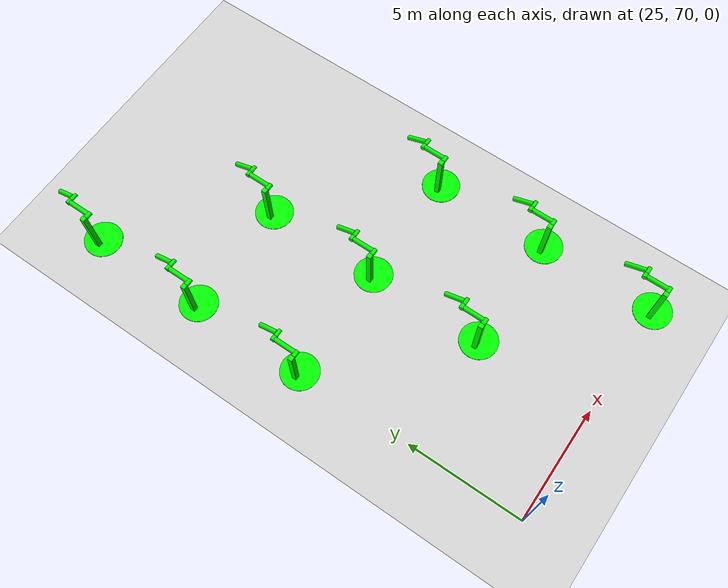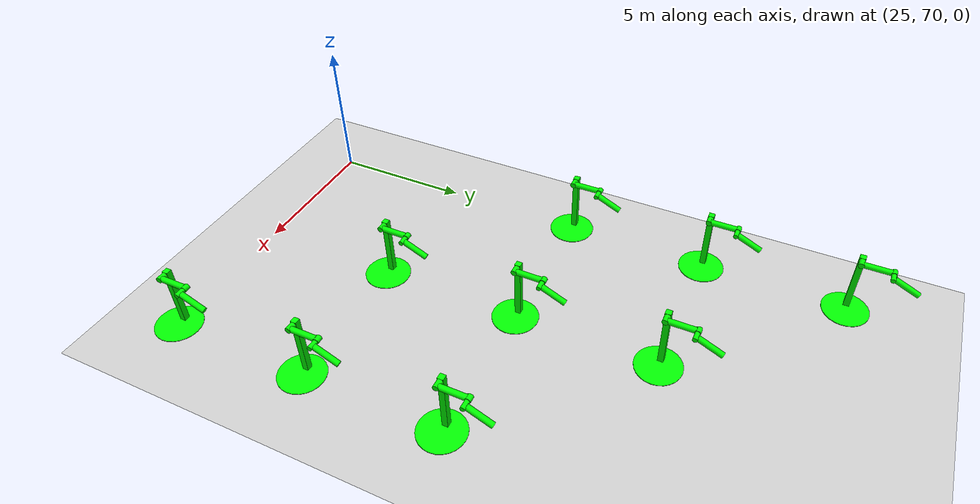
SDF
<sdf version="1.6">
 <world name="double_pendulums">
  <model name="ground_plane">
   <static>true</static>
   <link name="link">
    <collision name="collision">
     <geometry><plane><normal>0 0 1</normal><size>100 100</size></plane></geometry>
    </collision>
    <visual name="visual">
     <geometry><plane><normal>0 0 1</normal><size>100 100</size></plane></geometry>
     <material>
      <ambient>0.8 0.8 0.8 1</ambient>
      <diffuse>0.8 0.8 0.8 1</diffuse>
      <specular>0.8 0.8 0.8 1</specular>
     </material>
    </visual>
   </link>
  </model>
  <model name="dbl_pendulum_367">
   <pose>35 70 0 0 0 0</pose>
   <link name="base">
    <inertial><mass>100</mass></inertial>
    <visual name="vis_plate_on_ground">
     <pose>0 0 0.01 0 0 0</pose>
     <geometry><cylinder><radius>0.8</radius><length>0.02</length></cylinder></geometry>
     <material><ambient>0 1 0 1</ambient><diffuse>0 1 0 1</diffuse><specular>0 1 0 1</specular></material>
    </visual>
    <visual name="vis_pole">
     <pose>-0.275 0 1.1 0 0 0</pose>
     <geometry><box><size>0.2 0.2 2.2</size></box></geometry>
     <material><ambient>0 1 0 1</ambient><diffuse>0 1 0 1</diffuse><specular>0 1 0 1</specular></material>
    </visual>
    <collision name="col_plate_on_ground">
     <pose>0 0 0.01 0 0 0</pose>
     <geometry><cylinder><radius>0.8</radius><length>0.02</length></cylinder></geometry>
    </collision>
    <collision name="col_pole">
     <pose>-0.275 0 1.1 0 0 0</pose>
     <geometry><box><size>0.2 0.2 2.2</size></box></geometry>
    </collision>
   </link>
   <link name="upper_link">
    <pose>0 0 2.1 -1.5708 0 0</pose>
    <inertial><pose>0 0 0.5 0 0 0</pose></inertial>
    <visual name="vis_upper_joint">
     <pose>-0.05 0 0 0 1.5708 0</pose>
     <geometry><cylinder><radius>0.1</radius><length>0.3</length></cylinder></geometry>
     <material><ambient>0 1 0 1</ambient><diffuse>0 1 0 1</diffuse><specular>0 1 0 1</specular></material>
    </visual>
    <visual name="vis_lower_joint">
     <pose>0 0 1.0 0 1.5708 0</pose>
     <geometry><cylinder><radius>0.1</radius><length>0.2</length></cylinder></geometry>
     <material><ambient>0 1 0 1</ambient><diffuse>0 1 0 1</diffuse><specular>0 1 0 1</specular></material>
    </visual>
    <visual name="vis_cylinder">
     <pose>0 0 0.5 0 0 0</pose>
     <geometry><cylinder><radius>0.1</radius><length>0.9</length></cylinder></geometry>
     <material><ambient>0 1 0 1</ambient><diffuse>0 1 0 1</diffuse><specular>0 1 0 1</specular></material>
    </visual>
    <collision name="col_upper_joint">
     <pose>-0.05 0 0 0 1.5708 0</pose>
     <geometry><cylinder><radius>0.1</radius><length>0.3</length></cylinder></geometry>
    </collision>
    <collision name="col_lower_joint">
     <pose>0 0 1.0 0 1.5708 0</pose>
     <geometry><cylinder><radius>0.1</radius><length>0.2</length></cylinder></geometry>
    </collision>
    <collision name="col_cylinder">
     <pose>0 0 0.5 0 0 0</pose>
     <geometry><cylinder><radius>0.1</radius><length>0.9</length></cylinder></geometry>
    </collision>
   </link>
   <link name="lower_link">
    <pose>0.25 1.0 2.1 -2 0 0</pose>
    <inertial><pose>0 0 0.5 0 0 0</pose></inertial>
    <visual name="vis_lower_joint">
     <pose>0 0 0 0 1.5708 0</pose>
     <geometry><cylinder><radius>0.08</radius><length>0.3</length></cylinder></geometry>
     <material><ambient>0 1 0 1</ambient><diffuse>0 1 0 1</diffuse><specular>0 1 0 1</specular></material>
    </visual>
    <visual name="vis_cylinder">
     <pose>0 0 0.5 0 0 0</pose>
     <geometry><cylinder><radius>0.1</radius><length>0.9</length></cylinder></geometry>
     <material><ambient>0 1 0 1</ambient><diffuse>0 1 0 1</diffuse><specular>0 1 0 1</specular></material>
    </visual>
    <collision name="col_lower_joint">
     <pose>0 0 0 0 1.5708 0</pose>
     <geometry><cylinder><radius>0.08</radius><length>0.3</length></cylinder></geometry>
    </collision>
    <collision name="col_cylinder">
     <pose>0 0 0.5 0 0 0</pose>
     <geometry><cylinder><radius>0.1</radius><length>0.9</length></cylinder></geometry>
    </collision>
   </link>
   <joint name="upper_joint" type="revolute">
    <parent>base</parent>
    <child>upper_link</child>
    <axis><xyz>1.0 0 0</xyz></axis>
   </joint>
   <joint name="lower_joint" type="revolute">
    <parent>upper_link</parent>
    <child>lower_link</child>
    <axis><xyz>1.0 0 0</xyz></axis>
   </joint>
  </model>
  <model name="dbl_pendulum_391">
   <pose>30 75 0 0 0 0</pose>
   <link name="base">
    <inertial><mass>100</mass></inertial>
    <visual name="vis_plate_on_ground">
     <pose>0 0 0.01 0 0 0</pose>
     <geometry><cylinder><radius>0.8</radius><length>0.02</length></cylinder></geometry>
     <material><ambient>0 1 0 1</ambient><diffuse>0 1 0 1</diffuse><specular>0 1 0 1</specular></material>
    </visual>
    <visual name="vis_pole">
     <pose>-0.275 0 1.1 0 0 0</pose>
     <geometry><box><size>0.2 0.2 2.2</size></box></geometry>
     <material><ambient>0 1 0 1</ambient><diffuse>0 1 0 1</diffuse><specular>0 1 0 1</specular></material>
    </visual>
    <collision name="col_plate_on_ground">
     <pose>0 0 0.01 0 0 0</pose>
     <geometry><cylinder><radius>0.8</radius><length>0.02</length></cylinder></geometry>
    </collision>
    <collision name="col_pole">
     <pose>-0.275 0 1.1 0 0 0</pose>
     <geometry><box><size>0.2 0.2 2.2</size></box></geometry>
    </collision>
   </link>
   <link name="upper_link">
    <pose>0 0 2.1 -1.5708 0 0</pose>
    <inertial><pose>0 0 0.5 0 0 0</pose></inertial>
    <visual name="vis_upper_joint">
     <pose>-0.05 0 0 0 1.5708 0</pose>
     <geometry><cylinder><radius>0.1</radius><length>0.3</length></cylinder></geometry>
     <material><ambient>0 1 0 1</ambient><diffuse>0 1 0 1</diffuse><specular>0 1 0 1</specular></material>
    </visual>
    <visual name="vis_lower_joint">
     <pose>0 0 1.0 0 1.5708 0</pose>
     <geometry><cylinder><radius>0.1</radius><length>0.2</length></cylinder></geometry>
     <material><ambient>0 1 0 1</ambient><diffuse>0 1 0 1</diffuse><specular>0 1 0 1</specular></material>
    </visual>
    <visual name="vis_cylinder">
     <pose>0 0 0.5 0 0 0</pose>
     <geometry><cylinder><radius>0.1</radius><length>0.9</length></cylinder></geometry>
     <material><ambient>0 1 0 1</ambient><diffuse>0 1 0 1</diffuse><specular>0 1 0 1</specular></material>
    </visual>
    <collision name="col_upper_joint">
     <pose>-0.05 0 0 0 1.5708 0</pose>
     <geometry><cylinder><radius>0.1</radius><length>0.3</length></cylinder></geometry>
    </collision>
    <collision name="col_lower_joint">
     <pose>0 0 1.0 0 1.5708 0</pose>
     <geometry><cylinder><radius>0.1</radius><length>0.2</length></cylinder></geometry>
    </collision>
    <collision name="col_cylinder">
     <pose>0 0 0.5 0 0 0</pose>
     <geometry><cylinder><radius>0.1</radius><length>0.9</length></cylinder></geometry>
    </collision>
   </link>
   <link name="lower_link">
    <pose>0.25 1.0 2.1 -2 0 0</pose>
    <inertial><pose>0 0 0.5 0 0 0</pose></inertial>
    <visual name="vis_lower_joint">
     <pose>0 0 0 0 1.5708 0</pose>
     <geometry><cylinder><radius>0.08</radius><length>0.3</length></cylinder></geometry>
     <material><ambient>0 1 0 1</ambient><diffuse>0 1 0 1</diffuse><specular>0 1 0 1</specular></material>
    </visual>
    <visual name="vis_cylinder">
     <pose>0 0 0.5 0 0 0</pose>
     <geometry><cylinder><radius>0.1</radius><length>0.9</length></cylinder></geometry>
     <material><ambient>0 1 0 1</ambient><diffuse>0 1 0 1</diffuse><specular>0 1 0 1</specular></material>
    </visual>
    <collision name="col_lower_joint">
     <pose>0 0 0 0 1.5708 0</pose>
     <geometry><cylinder><radius>0.08</radius><length>0.3</length></cylinder></geometry>
    </collision>
    <collision name="col_cylinder">
     <pose>0 0 0.5 0 0 0</pose>
     <geometry><cylinder><radius>0.1</radius><length>0.9</length></cylinder></geometry>
    </collision>
   </link>
   <joint name="upper_joint" type="revolute">
    <parent>base</parent>
    <child>upper_link</child>
    <axis><xyz>1.0 0 0</xyz></axis>
   </joint>
   <joint name="lower_joint" type="revolute">
    <parent>upper_link</parent>
    <child>lower_link</child>
    <axis><xyz>1.0 0 0</xyz></axis>
   </joint>
  </model>
  <model name="dbl_pendulum_392">
   <pose>35 75 0 0 0 0</pose>
   <link name="base">
    <inertial><mass>100</mass></inertial>
    <visual name="vis_plate_on_ground">
     <pose>0 0 0.01 0 0 0</pose>
     <geometry><cylinder><radius>0.8</radius><length>0.02</length></cylinder></geometry>
     <material><ambient>0 1 0 1</ambient><diffuse>0 1 0 1</diffuse><specular>0 1 0 1</specular></material>
    </visual>
    <visual name="vis_pole">
     <pose>-0.275 0 1.1 0 0 0</pose>
     <geometry><box><size>0.2 0.2 2.2</size></box></geometry>
     <material><ambient>0 1 0 1</ambient><diffuse>0 1 0 1</diffuse><specular>0 1 0 1</specular></material>
    </visual>
    <collision name="col_plate_on_ground">
     <pose>0 0 0.01 0 0 0</pose>
     <geometry><cylinder><radius>0.8</radius><length>0.02</length></cylinder></geometry>
    </collision>
    <collision name="col_pole">
     <pose>-0.275 0 1.1 0 0 0</pose>
     <geometry><box><size>0.2 0.2 2.2</size></box></geometry>
    </collision>
   </link>
   <link name="upper_link">
    <pose>0 0 2.1 -1.5708 0 0</pose>
    <inertial><pose>0 0 0.5 0 0 0</pose></inertial>
    <visual name="vis_upper_joint">
     <pose>-0.05 0 0 0 1.5708 0</pose>
     <geometry><cylinder><radius>0.1</radius><length>0.3</length></cylinder></geometry>
     <material><ambient>0 1 0 1</ambient><diffuse>0 1 0 1</diffuse><specular>0 1 0 1</specular></material>
    </visual>
    <visual name="vis_lower_joint">
     <pose>0 0 1.0 0 1.5708 0</pose>
     <geometry><cylinder><radius>0.1</radius><length>0.2</length></cylinder></geometry>
     <material><ambient>0 1 0 1</ambient><diffuse>0 1 0 1</diffuse><specular>0 1 0 1</specular></material>
    </visual>
    <visual name="vis_cylinder">
     <pose>0 0 0.5 0 0 0</pose>
     <geometry><cylinder><radius>0.1</radius><length>0.9</length></cylinder></geometry>
     <material><ambient>0 1 0 1</ambient><diffuse>0 1 0 1</diffuse><specular>0 1 0 1</specular></material>
    </visual>
    <collision name="col_upper_joint">
     <pose>-0.05 0 0 0 1.5708 0</pose>
     <geometry><cylinder><radius>0.1</radius><length>0.3</length></cylinder></geometry>
    </collision>
    <collision name="col_lower_joint">
     <pose>0 0 1.0 0 1.5708 0</pose>
     <geometry><cylinder><radius>0.1</radius><length>0.2</length></cylinder></geometry>
    </collision>
    <collision name="col_cylinder">
     <pose>0 0 0.5 0 0 0</pose>
     <geometry><cylinder><radius>0.1</radius><length>0.9</length></cylinder></geometry>
    </collision>
   </link>
   <link name="lower_link">
    <pose>0.25 1.0 2.1 -2 0 0</pose>
    <inertial><pose>0 0 0.5 0 0 0</pose></inertial>
    <visual name="vis_lower_joint">
     <pose>0 0 0 0 1.5708 0</pose>
     <geometry><cylinder><radius>0.08</radius><length>0.3</length></cylinder></geometry>
     <material><ambient>0 1 0 1</ambient><diffuse>0 1 0 1</diffuse><specular>0 1 0 1</specular></material>
    </visual>
    <visual name="vis_cylinder">
     <pose>0 0 0.5 0 0 0</pose>
     <geometry><cylinder><radius>0.1</radius><length>0.9</length></cylinder></geometry>
     <material><ambient>0 1 0 1</ambient><diffuse>0 1 0 1</diffuse><specular>0 1 0 1</specular></material>
    </visual>
    <collision name="col_lower_joint">
     <pose>0 0 0 0 1.5708 0</pose>
     <geometry><cylinder><radius>0.08</radius><length>0.3</length></cylinder></geometry>
    </collision>
    <collision name="col_cylinder">
     <pose>0 0 0.5 0 0 0</pose>
     <geometry><cylinder><radius>0.1</radius><length>0.9</length></cylinder></geometry>
    </collision>
   </link>
   <joint name="upper_joint" type="revolute">
    <parent>base</parent>
    <child>upper_link</child>
    <axis><xyz>1.0 0 0</xyz></axis>
   </joint>
   <joint name="lower_joint" type="revolute">
    <parent>upper_link</parent>
    <child>lower_link</child>
    <axis><xyz>1.0 0 0</xyz></axis>
   </joint>
  </model>
  <model name="dbl_pendulum_415">
   <pose>25 80 0 0 0 0</pose>
   <link name="base">
    <inertial><mass>100</mass></inertial>
    <visual name="vis_plate_on_ground">
     <pose>0 0 0.01 0 0 0</pose>
     <geometry><cylinder><radius>0.8</radius><length>0.02</length></cylinder></geometry>
     <material><ambient>0 1 0 1</ambient><diffuse>0 1 0 1</diffuse><specular>0 1 0 1</specular></material>
    </visual>
    <visual name="vis_pole">
     <pose>-0.275 0 1.1 0 0 0</pose>
     <geometry><box><size>0.2 0.2 2.2</size></box></geometry>
     <material><ambient>0 1 0 1</ambient><diffuse>0 1 0 1</diffuse><specular>0 1 0 1</specular></material>
    </visual>
    <collision name="col_plate_on_ground">
     <pose>0 0 0.01 0 0 0</pose>
     <geometry><cylinder><radius>0.8</radius><length>0.02</length></cylinder></geometry>
    </collision>
    <collision name="col_pole">
     <pose>-0.275 0 1.1 0 0 0</pose>
     <geometry><box><size>0.2 0.2 2.2</size></box></geometry>
    </collision>
   </link>
   <link name="upper_link">
    <pose>0 0 2.1 -1.5708 0 0</pose>
    <inertial><pose>0 0 0.5 0 0 0</pose></inertial>
    <visual name="vis_upper_joint">
     <pose>-0.05 0 0 0 1.5708 0</pose>
     <geometry><cylinder><radius>0.1</radius><length>0.3</length></cylinder></geometry>
     <material><ambient>0 1 0 1</ambient><diffuse>0 1 0 1</diffuse><specular>0 1 0 1</specular></material>
    </visual>
    <visual name="vis_lower_joint">
     <pose>0 0 1.0 0 1.5708 0</pose>
     <geometry><cylinder><radius>0.1</radius><length>0.2</length></cylinder></geometry>
     <material><ambient>0 1 0 1</ambient><diffuse>0 1 0 1</diffuse><specular>0 1 0 1</specular></material>
    </visual>
    <visual name="vis_cylinder">
     <pose>0 0 0.5 0 0 0</pose>
     <geometry><cylinder><radius>0.1</radius><length>0.9</length></cylinder></geometry>
     <material><ambient>0 1 0 1</ambient><diffuse>0 1 0 1</diffuse><specular>0 1 0 1</specular></material>
    </visual>
    <collision name="col_upper_joint">
     <pose>-0.05 0 0 0 1.5708 0</pose>
     <geometry><cylinder><radius>0.1</radius><length>0.3</length></cylinder></geometry>
    </collision>
    <collision name="col_lower_joint">
     <pose>0 0 1.0 0 1.5708 0</pose>
     <geometry><cylinder><radius>0.1</radius><length>0.2</length></cylinder></geometry>
    </collision>
    <collision name="col_cylinder">
     <pose>0 0 0.5 0 0 0</pose>
     <geometry><cylinder><radius>0.1</radius><length>0.9</length></cylinder></geometry>
    </collision>
   </link>
   <link name="lower_link">
    <pose>0.25 1.0 2.1 -2 0 0</pose>
    <inertial><pose>0 0 0.5 0 0 0</pose></inertial>
    <visual name="vis_lower_joint">
     <pose>0 0 0 0 1.5708 0</pose>
     <geometry><cylinder><radius>0.08</radius><length>0.3</length></cylinder></geometry>
     <material><ambient>0 1 0 1</ambient><diffuse>0 1 0 1</diffuse><specular>0 1 0 1</specular></material>
    </visual>
    <visual name="vis_cylinder">
     <pose>0 0 0.5 0 0 0</pose>
     <geometry><cylinder><radius>0.1</radius><length>0.9</length></cylinder></geometry>
     <material><ambient>0 1 0 1</ambient><diffuse>0 1 0 1</diffuse><specular>0 1 0 1</specular></material>
    </visual>
    <collision name="col_lower_joint">
     <pose>0 0 0 0 1.5708 0</pose>
     <geometry><cylinder><radius>0.08</radius><length>0.3</length></cylinder></geometry>
    </collision>
    <collision name="col_cylinder">
     <pose>0 0 0.5 0 0 0</pose>
     <geometry><cylinder><radius>0.1</radius><length>0.9</length></cylinder></geometry>
    </collision>
   </link>
   <joint name="upper_joint" type="revolute">
    <parent>base</parent>
    <child>upper_link</child>
    <axis><xyz>1.0 0 0</xyz></axis>
   </joint>
   <joint name="lower_joint" type="revolute">
    <parent>upper_link</parent>
    <child>lower_link</child>
    <axis><xyz>1.0 0 0</xyz></axis>
   </joint>
  </model>
  <model name="dbl_pendulum_416">
   <pose>30 80 0 0 0 0</pose>
   <link name="base">
    <inertial><mass>100</mass></inertial>
    <visual name="vis_plate_on_ground">
     <pose>0 0 0.01 0 0 0</pose>
     <geometry><cylinder><radius>0.8</radius><length>0.02</length></cylinder></geometry>
     <material><ambient>0 1 0 1</ambient><diffuse>0 1 0 1</diffuse><specular>0 1 0 1</specular></material>
    </visual>
    <visual name="vis_pole">
     <pose>-0.275 0 1.1 0 0 0</pose>
     <geometry><box><size>0.2 0.2 2.2</size></box></geometry>
     <material><ambient>0 1 0 1</ambient><diffuse>0 1 0 1</diffuse><specular>0 1 0 1</specular></material>
    </visual>
    <collision name="col_plate_on_ground">
     <pose>0 0 0.01 0 0 0</pose>
     <geometry><cylinder><radius>0.8</radius><length>0.02</length></cylinder></geometry>
    </collision>
    <collision name="col_pole">
     <pose>-0.275 0 1.1 0 0 0</pose>
     <geometry><box><size>0.2 0.2 2.2</size></box></geometry>
    </collision>
   </link>
   <link name="upper_link">
    <pose>0 0 2.1 -1.5708 0 0</pose>
    <inertial><pose>0 0 0.5 0 0 0</pose></inertial>
    <visual name="vis_upper_joint">
     <pose>-0.05 0 0 0 1.5708 0</pose>
     <geometry><cylinder><radius>0.1</radius><length>0.3</length></cylinder></geometry>
     <material><ambient>0 1 0 1</ambient><diffuse>0 1 0 1</diffuse><specular>0 1 0 1</specular></material>
    </visual>
    <visual name="vis_lower_joint">
     <pose>0 0 1.0 0 1.5708 0</pose>
     <geometry><cylinder><radius>0.1</radius><length>0.2</length></cylinder></geometry>
     <material><ambient>0 1 0 1</ambient><diffuse>0 1 0 1</diffuse><specular>0 1 0 1</specular></material>
    </visual>
    <visual name="vis_cylinder">
     <pose>0 0 0.5 0 0 0</pose>
     <geometry><cylinder><radius>0.1</radius><length>0.9</length></cylinder></geometry>
     <material><ambient>0 1 0 1</ambient><diffuse>0 1 0 1</diffuse><specular>0 1 0 1</specular></material>
    </visual>
    <collision name="col_upper_joint">
     <pose>-0.05 0 0 0 1.5708 0</pose>
     <geometry><cylinder><radius>0.1</radius><length>0.3</length></cylinder></geometry>
    </collision>
    <collision name="col_lower_joint">
     <pose>0 0 1.0 0 1.5708 0</pose>
     <geometry><cylinder><radius>0.1</radius><length>0.2</length></cylinder></geometry>
    </collision>
    <collision name="col_cylinder">
     <pose>0 0 0.5 0 0 0</pose>
     <geometry><cylinder><radius>0.1</radius><length>0.9</length></cylinder></geometry>
    </collision>
   </link>
   <link name="lower_link">
    <pose>0.25 1.0 2.1 -2 0 0</pose>
    <inertial><pose>0 0 0.5 0 0 0</pose></inertial>
    <visual name="vis_lower_joint">
     <pose>0 0 0 0 1.5708 0</pose>
     <geometry><cylinder><radius>0.08</radius><length>0.3</length></cylinder></geometry>
     <material><ambient>0 1 0 1</ambient><diffuse>0 1 0 1</diffuse><specular>0 1 0 1</specular></material>
    </visual>
    <visual name="vis_cylinder">
     <pose>0 0 0.5 0 0 0</pose>
     <geometry><cylinder><radius>0.1</radius><length>0.9</length></cylinder></geometry>
     <material><ambient>0 1 0 1</ambient><diffuse>0 1 0 1</diffuse><specular>0 1 0 1</specular></material>
    </visual>
    <collision name="col_lower_joint">
     <pose>0 0 0 0 1.5708 0</pose>
     <geometry><cylinder><radius>0.08</radius><length>0.3</length></cylinder></geometry>
    </collision>
    <collision name="col_cylinder">
     <pose>0 0 0.5 0 0 0</pose>
     <geometry><cylinder><radius>0.1</radius><length>0.9</length></cylinder></geometry>
    </collision>
   </link>
   <joint name="upper_joint" type="revolute">
    <parent>base</parent>
    <child>upper_link</child>
    <axis><xyz>1.0 0 0</xyz></axis>
   </joint>
   <joint name="lower_joint" type="revolute">
    <parent>upper_link</parent>
    <child>lower_link</child>
    <axis><xyz>1.0 0 0</xyz></axis>
   </joint>
  </model>
  <model name="dbl_pendulum_417">
   <pose>35 80 0 0 0 0</pose>
   <link name="base">
    <inertial><mass>100</mass></inertial>
    <visual name="vis_plate_on_ground">
     <pose>0 0 0.01 0 0 0</pose>
     <geometry><cylinder><radius>0.8</radius><length>0.02</length></cylinder></geometry>
     <material><ambient>0 1 0 1</ambient><diffuse>0 1 0 1</diffuse><specular>0 1 0 1</specular></material>
    </visual>
    <visual name="vis_pole">
     <pose>-0.275 0 1.1 0 0 0</pose>
     <geometry><box><size>0.2 0.2 2.2</size></box></geometry>
     <material><ambient>0 1 0 1</ambient><diffuse>0 1 0 1</diffuse><specular>0 1 0 1</specular></material>
    </visual>
    <collision name="col_plate_on_ground">
     <pose>0 0 0.01 0 0 0</pose>
     <geometry><cylinder><radius>0.8</radius><length>0.02</length></cylinder></geometry>
    </collision>
    <collision name="col_pole">
     <pose>-0.275 0 1.1 0 0 0</pose>
     <geometry><box><size>0.2 0.2 2.2</size></box></geometry>
    </collision>
   </link>
   <link name="upper_link">
    <pose>0 0 2.1 -1.5708 0 0</pose>
    <inertial><pose>0 0 0.5 0 0 0</pose></inertial>
    <visual name="vis_upper_joint">
     <pose>-0.05 0 0 0 1.5708 0</pose>
     <geometry><cylinder><radius>0.1</radius><length>0.3</length></cylinder></geometry>
     <material><ambient>0 1 0 1</ambient><diffuse>0 1 0 1</diffuse><specular>0 1 0 1</specular></material>
    </visual>
    <visual name="vis_lower_joint">
     <pose>0 0 1.0 0 1.5708 0</pose>
     <geometry><cylinder><radius>0.1</radius><length>0.2</length></cylinder></geometry>
     <material><ambient>0 1 0 1</ambient><diffuse>0 1 0 1</diffuse><specular>0 1 0 1</specular></material>
    </visual>
    <visual name="vis_cylinder">
     <pose>0 0 0.5 0 0 0</pose>
     <geometry><cylinder><radius>0.1</radius><length>0.9</length></cylinder></geometry>
     <material><ambient>0 1 0 1</ambient><diffuse>0 1 0 1</diffuse><specular>0 1 0 1</specular></material>
    </visual>
    <collision name="col_upper_joint">
     <pose>-0.05 0 0 0 1.5708 0</pose>
     <geometry><cylinder><radius>0.1</radius><length>0.3</length></cylinder></geometry>
    </collision>
    <collision name="col_lower_joint">
     <pose>0 0 1.0 0 1.5708 0</pose>
     <geometry><cylinder><radius>0.1</radius><length>0.2</length></cylinder></geometry>
    </collision>
    <collision name="col_cylinder">
     <pose>0 0 0.5 0 0 0</pose>
     <geometry><cylinder><radius>0.1</radius><length>0.9</length></cylinder></geometry>
    </collision>
   </link>
   <link name="lower_link">
    <pose>0.25 1.0 2.1 -2 0 0</pose>
    <inertial><pose>0 0 0.5 0 0 0</pose></inertial>
    <visual name="vis_lower_joint">
     <pose>0 0 0 0 1.5708 0</pose>
     <geometry><cylinder><radius>0.08</radius><length>0.3</length></cylinder></geometry>
     <material><ambient>0 1 0 1</ambient><diffuse>0 1 0 1</diffuse><specular>0 1 0 1</specular></material>
    </visual>
    <visual name="vis_cylinder">
     <pose>0 0 0.5 0 0 0</pose>
     <geometry><cylinder><radius>0.1</radius><length>0.9</length></cylinder></geometry>
     <material><ambient>0 1 0 1</ambient><diffuse>0 1 0 1</diffuse><specular>0 1 0 1</specular></material>
    </visual>
    <collision name="col_lower_joint">
     <pose>0 0 0 0 1.5708 0</pose>
     <geometry><cylinder><radius>0.08</radius><length>0.3</length></cylinder></geometry>
    </collision>
    <collision name="col_cylinder">
     <pose>0 0 0.5 0 0 0</pose>
     <geometry><cylinder><radius>0.1</radius><length>0.9</length></cylinder></geometry>
    </collision>
   </link>
   <joint name="upper_joint" type="revolute">
    <parent>base</parent>
    <child>upper_link</child>
    <axis><xyz>1.0 0 0</xyz></axis>
   </joint>
   <joint name="lower_joint" type="revolute">
    <parent>upper_link</parent>
    <child>lower_link</child>
    <axis><xyz>1.0 0 0</xyz></axis>
   </joint>
  </model>
  <model name="dbl_pendulum_440">
   <pose>25 85 0 0 0 0</pose>
   <link name="base">
    <inertial><mass>100</mass></inertial>
    <visual name="vis_plate_on_ground">
     <pose>0 0 0.01 0 0 0</pose>
     <geometry><cylinder><radius>0.8</radius><length>0.02</length></cylinder></geometry>
     <material><ambient>0 1 0 1</ambient><diffuse>0 1 0 1</diffuse><specular>0 1 0 1</specular></material>
    </visual>
    <visual name="vis_pole">
     <pose>-0.275 0 1.1 0 0 0</pose>
     <geometry><box><size>0.2 0.2 2.2</size></box></geometry>
     <material><ambient>0 1 0 1</ambient><diffuse>0 1 0 1</diffuse><specular>0 1 0 1</specular></material>
    </visual>
    <collision name="col_plate_on_ground">
     <pose>0 0 0.01 0 0 0</pose>
     <geometry><cylinder><radius>0.8</radius><length>0.02</length></cylinder></geometry>
    </collision>
    <collision name="col_pole">
     <pose>-0.275 0 1.1 0 0 0</pose>
     <geometry><box><size>0.2 0.2 2.2</size></box></geometry>
    </collision>
   </link>
   <link name="upper_link">
    <pose>0 0 2.1 -1.5708 0 0</pose>
    <inertial><pose>0 0 0.5 0 0 0</pose></inertial>
    <visual name="vis_upper_joint">
     <pose>-0.05 0 0 0 1.5708 0</pose>
     <geometry><cylinder><radius>0.1</radius><length>0.3</length></cylinder></geometry>
     <material><ambient>0 1 0 1</ambient><diffuse>0 1 0 1</diffuse><specular>0 1 0 1</specular></material>
    </visual>
    <visual name="vis_lower_joint">
     <pose>0 0 1.0 0 1.5708 0</pose>
     <geometry><cylinder><radius>0.1</radius><length>0.2</length></cylinder></geometry>
     <material><ambient>0 1 0 1</ambient><diffuse>0 1 0 1</diffuse><specular>0 1 0 1</specular></material>
    </visual>
    <visual name="vis_cylinder">
     <pose>0 0 0.5 0 0 0</pose>
     <geometry><cylinder><radius>0.1</radius><length>0.9</length></cylinder></geometry>
     <material><ambient>0 1 0 1</ambient><diffuse>0 1 0 1</diffuse><specular>0 1 0 1</specular></material>
    </visual>
    <collision name="col_upper_joint">
     <pose>-0.05 0 0 0 1.5708 0</pose>
     <geometry><cylinder><radius>0.1</radius><length>0.3</length></cylinder></geometry>
    </collision>
    <collision name="col_lower_joint">
     <pose>0 0 1.0 0 1.5708 0</pose>
     <geometry><cylinder><radius>0.1</radius><length>0.2</length></cylinder></geometry>
    </collision>
    <collision name="col_cylinder">
     <pose>0 0 0.5 0 0 0</pose>
     <geometry><cylinder><radius>0.1</radius><length>0.9</length></cylinder></geometry>
    </collision>
   </link>
   <link name="lower_link">
    <pose>0.25 1.0 2.1 -2 0 0</pose>
    <inertial><pose>0 0 0.5 0 0 0</pose></inertial>
    <visual name="vis_lower_joint">
     <pose>0 0 0 0 1.5708 0</pose>
     <geometry><cylinder><radius>0.08</radius><length>0.3</length></cylinder></geometry>
     <material><ambient>0 1 0 1</ambient><diffuse>0 1 0 1</diffuse><specular>0 1 0 1</specular></material>
    </visual>
    <visual name="vis_cylinder">
     <pose>0 0 0.5 0 0 0</pose>
     <geometry><cylinder><radius>0.1</radius><length>0.9</length></cylinder></geometry>
     <material><ambient>0 1 0 1</ambient><diffuse>0 1 0 1</diffuse><specular>0 1 0 1</specular></material>
    </visual>
    <collision name="col_lower_joint">
     <pose>0 0 0 0 1.5708 0</pose>
     <geometry><cylinder><radius>0.08</radius><length>0.3</length></cylinder></geometry>
    </collision>
    <collision name="col_cylinder">
     <pose>0 0 0.5 0 0 0</pose>
     <geometry><cylinder><radius>0.1</radius><length>0.9</length></cylinder></geometry>
    </collision>
   </link>
   <joint name="upper_joint" type="revolute">
    <parent>base</parent>
    <child>upper_link</child>
    <axis><xyz>1.0 0 0</xyz></axis>
   </joint>
   <joint name="lower_joint" type="revolute">
    <parent>upper_link</parent>
    <child>lower_link</child>
    <axis><xyz>1.0 0 0</xyz></axis>
   </joint>
  </model>
  <model name="dbl_pendulum_441">
   <pose>30 85 0 0 0 0</pose>
   <link name="base">
    <inertial><mass>100</mass></inertial>
    <visual name="vis_plate_on_ground">
     <pose>0 0 0.01 0 0 0</pose>
     <geometry><cylinder><radius>0.8</radius><length>0.02</length></cylinder></geometry>
     <material><ambient>0 1 0 1</ambient><diffuse>0 1 0 1</diffuse><specular>0 1 0 1</specular></material>
    </visual>
    <visual name="vis_pole">
     <pose>-0.275 0 1.1 0 0 0</pose>
     <geometry><box><size>0.2 0.2 2.2</size></box></geometry>
     <material><ambient>0 1 0 1</ambient><diffuse>0 1 0 1</diffuse><specular>0 1 0 1</specular></material>
    </visual>
    <collision name="col_plate_on_ground">
     <pose>0 0 0.01 0 0 0</pose>
     <geometry><cylinder><radius>0.8</radius><length>0.02</length></cylinder></geometry>
    </collision>
    <collision name="col_pole">
     <pose>-0.275 0 1.1 0 0 0</pose>
     <geometry><box><size>0.2 0.2 2.2</size></box></geometry>
    </collision>
   </link>
   <link name="upper_link">
    <pose>0 0 2.1 -1.5708 0 0</pose>
    <inertial><pose>0 0 0.5 0 0 0</pose></inertial>
    <visual name="vis_upper_joint">
     <pose>-0.05 0 0 0 1.5708 0</pose>
     <geometry><cylinder><radius>0.1</radius><length>0.3</length></cylinder></geometry>
     <material><ambient>0 1 0 1</ambient><diffuse>0 1 0 1</diffuse><specular>0 1 0 1</specular></material>
    </visual>
    <visual name="vis_lower_joint">
     <pose>0 0 1.0 0 1.5708 0</pose>
     <geometry><cylinder><radius>0.1</radius><length>0.2</length></cylinder></geometry>
     <material><ambient>0 1 0 1</ambient><diffuse>0 1 0 1</diffuse><specular>0 1 0 1</specular></material>
    </visual>
    <visual name="vis_cylinder">
     <pose>0 0 0.5 0 0 0</pose>
     <geometry><cylinder><radius>0.1</radius><length>0.9</length></cylinder></geometry>
     <material><ambient>0 1 0 1</ambient><diffuse>0 1 0 1</diffuse><specular>0 1 0 1</specular></material>
    </visual>
    <collision name="col_upper_joint">
     <pose>-0.05 0 0 0 1.5708 0</pose>
     <geometry><cylinder><radius>0.1</radius><length>0.3</length></cylinder></geometry>
    </collision>
    <collision name="col_lower_joint">
     <pose>0 0 1.0 0 1.5708 0</pose>
     <geometry><cylinder><radius>0.1</radius><length>0.2</length></cylinder></geometry>
    </collision>
    <collision name="col_cylinder">
     <pose>0 0 0.5 0 0 0</pose>
     <geometry><cylinder><radius>0.1</radius><length>0.9</length></cylinder></geometry>
    </collision>
   </link>
   <link name="lower_link">
    <pose>0.25 1.0 2.1 -2 0 0</pose>
    <inertial><pose>0 0 0.5 0 0 0</pose></inertial>
    <visual name="vis_lower_joint">
     <pose>0 0 0 0 1.5708 0</pose>
     <geometry><cylinder><radius>0.08</radius><length>0.3</length></cylinder></geometry>
     <material><ambient>0 1 0 1</ambient><diffuse>0 1 0 1</diffuse><specular>0 1 0 1</specular></material>
    </visual>
    <visual name="vis_cylinder">
     <pose>0 0 0.5 0 0 0</pose>
     <geometry><cylinder><radius>0.1</radius><length>0.9</length></cylinder></geometry>
     <material><ambient>0 1 0 1</ambient><diffuse>0 1 0 1</diffuse><specular>0 1 0 1</specular></material>
    </visual>
    <collision name="col_lower_joint">
     <pose>0 0 0 0 1.5708 0</pose>
     <geometry><cylinder><radius>0.08</radius><length>0.3</length></cylinder></geometry>
    </collision>
    <collision name="col_cylinder">
     <pose>0 0 0.5 0 0 0</pose>
     <geometry><cylinder><radius>0.1</radius><length>0.9</length></cylinder></geometry>
    </collision>
   </link>
   <joint name="upper_joint" type="revolute">
    <parent>base</parent>
    <child>upper_link</child>
    <axis><xyz>1.0 0 0</xyz></axis>
   </joint>
   <joint name="lower_joint" type="revolute">
    <parent>upper_link</parent>
    <child>lower_link</child>
    <axis><xyz>1.0 0 0</xyz></axis>
   </joint>
  </model>
  <model name="dbl_pendulum_465">
   <pose>25 90 0 0 0 0</pose>
   <link name="base">
    <inertial><mass>100</mass></inertial>
    <visual name="vis_plate_on_ground">
     <pose>0 0 0.01 0 0 0</pose>
     <geometry><cylinder><radius>0.8</radius><length>0.02</length></cylinder></geometry>
     <material><ambient>0 1 0 1</ambient><diffuse>0 1 0 1</diffuse><specular>0 1 0 1</specular></material>
    </visual>
    <visual name="vis_pole">
     <pose>-0.275 0 1.1 0 0 0</pose>
     <geometry><box><size>0.2 0.2 2.2</size></box></geometry>
     <material><ambient>0 1 0 1</ambient><diffuse>0 1 0 1</diffuse><specular>0 1 0 1</specular></material>
    </visual>
    <collision name="col_plate_on_ground">
     <pose>0 0 0.01 0 0 0</pose>
     <geometry><cylinder><radius>0.8</radius><length>0.02</length></cylinder></geometry>
    </collision>
    <collision name="col_pole">
     <pose>-0.275 0 1.1 0 0 0</pose>
     <geometry><box><size>0.2 0.2 2.2</size></box></geometry>
    </collision>
   </link>
   <link name="upper_link">
    <pose>0 0 2.1 -1.5708 0 0</pose>
    <inertial><pose>0 0 0.5 0 0 0</pose></inertial>
    <visual name="vis_upper_joint">
     <pose>-0.05 0 0 0 1.5708 0</pose>
     <geometry><cylinder><radius>0.1</radius><length>0.3</length></cylinder></geometry>
     <material><ambient>0 1 0 1</ambient><diffuse>0 1 0 1</diffuse><specular>0 1 0 1</specular></material>
    </visual>
    <visual name="vis_lower_joint">
     <pose>0 0 1.0 0 1.5708 0</pose>
     <geometry><cylinder><radius>0.1</radius><length>0.2</length></cylinder></geometry>
     <material><ambient>0 1 0 1</ambient><diffuse>0 1 0 1</diffuse><specular>0 1 0 1</specular></material>
    </visual>
    <visual name="vis_cylinder">
     <pose>0 0 0.5 0 0 0</pose>
     <geometry><cylinder><radius>0.1</radius><length>0.9</length></cylinder></geometry>
     <material><ambient>0 1 0 1</ambient><diffuse>0 1 0 1</diffuse><specular>0 1 0 1</specular></material>
    </visual>
    <collision name="col_upper_joint">
     <pose>-0.05 0 0 0 1.5708 0</pose>
     <geometry><cylinder><radius>0.1</radius><length>0.3</length></cylinder></geometry>
    </collision>
    <collision name="col_lower_joint">
     <pose>0 0 1.0 0 1.5708 0</pose>
     <geometry><cylinder><radius>0.1</radius><length>0.2</length></cylinder></geometry>
    </collision>
    <collision name="col_cylinder">
     <pose>0 0 0.5 0 0 0</pose>
     <geometry><cylinder><radius>0.1</radius><length>0.9</length></cylinder></geometry>
    </collision>
   </link>
   <link name="lower_link">
    <pose>0.25 1.0 2.1 -2 0 0</pose>
    <inertial><pose>0 0 0.5 0 0 0</pose></inertial>
    <visual name="vis_lower_joint">
     <pose>0 0 0 0 1.5708 0</pose>
     <geometry><cylinder><radius>0.08</radius><length>0.3</length></cylinder></geometry>
     <material><ambient>0 1 0 1</ambient><diffuse>0 1 0 1</diffuse><specular>0 1 0 1</specular></material>
    </visual>
    <visual name="vis_cylinder">
     <pose>0 0 0.5 0 0 0</pose>
     <geometry><cylinder><radius>0.1</radius><length>0.9</length></cylinder></geometry>
     <material><ambient>0 1 0 1</ambient><diffuse>0 1 0 1</diffuse><specular>0 1 0 1</specular></material>
    </visual>
    <collision name="col_lower_joint">
     <pose>0 0 0 0 1.5708 0</pose>
     <geometry><cylinder><radius>0.08</radius><length>0.3</length></cylinder></geometry>
    </collision>
    <collision name="col_cylinder">
     <pose>0 0 0.5 0 0 0</pose>
     <geometry><cylinder><radius>0.1</radius><length>0.9</length></cylinder></geometry>
    </collision>
   </link>
   <joint name="upper_joint" type="revolute">
    <parent>base</parent>
    <child>upper_link</child>
    <axis><xyz>1.0 0 0</xyz></axis>
   </joint>
   <joint name="lower_joint" type="revolute">
    <parent>upper_link</parent>
    <child>lower_link</child>
    <axis><xyz>1.0 0 0</xyz></axis>
   </joint>
  </model>
 </world>
</sdf>
